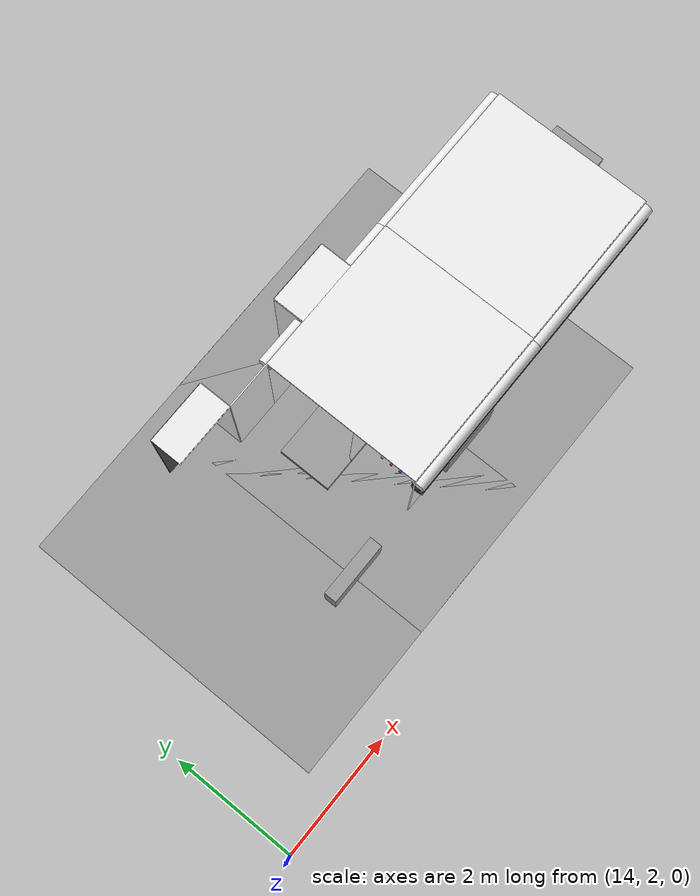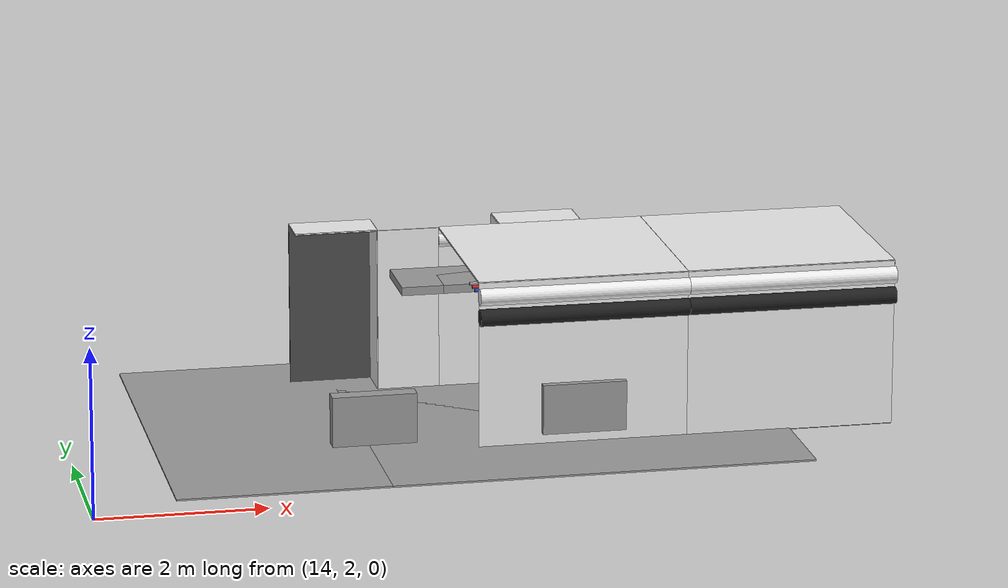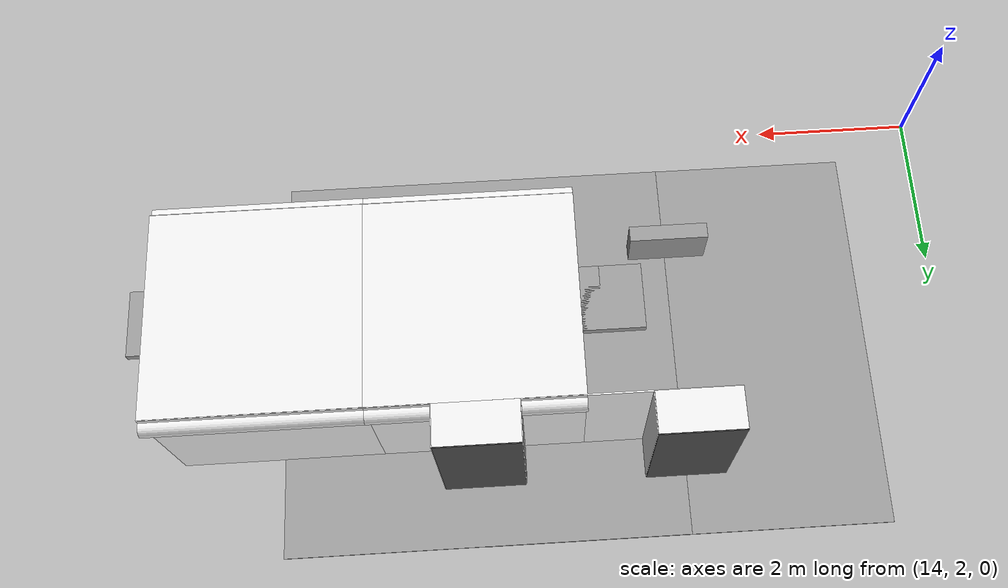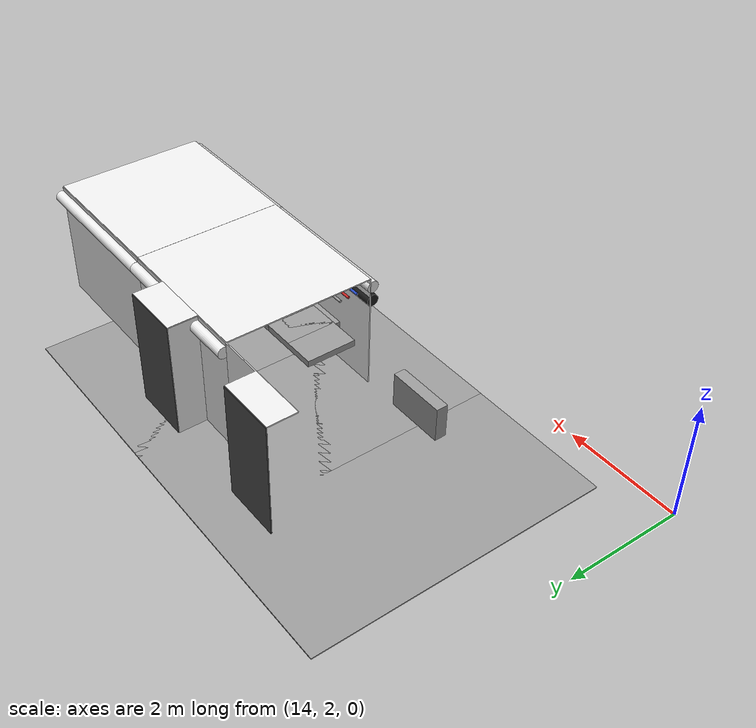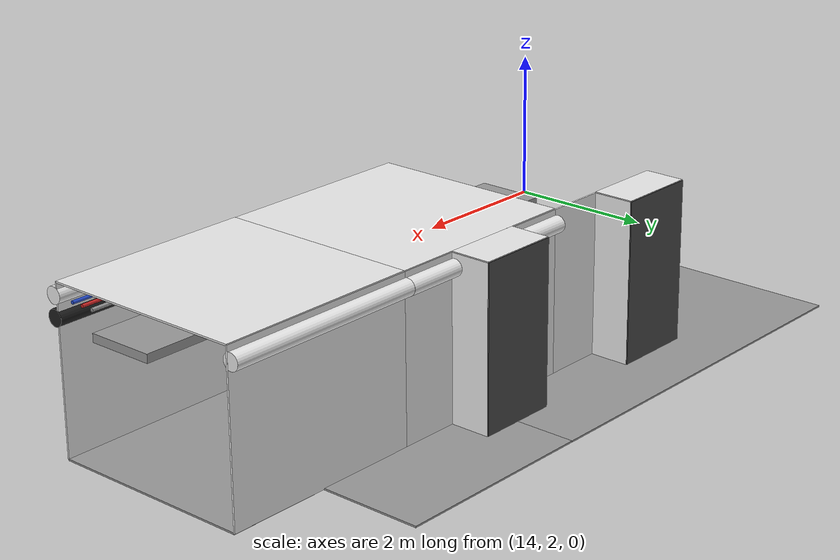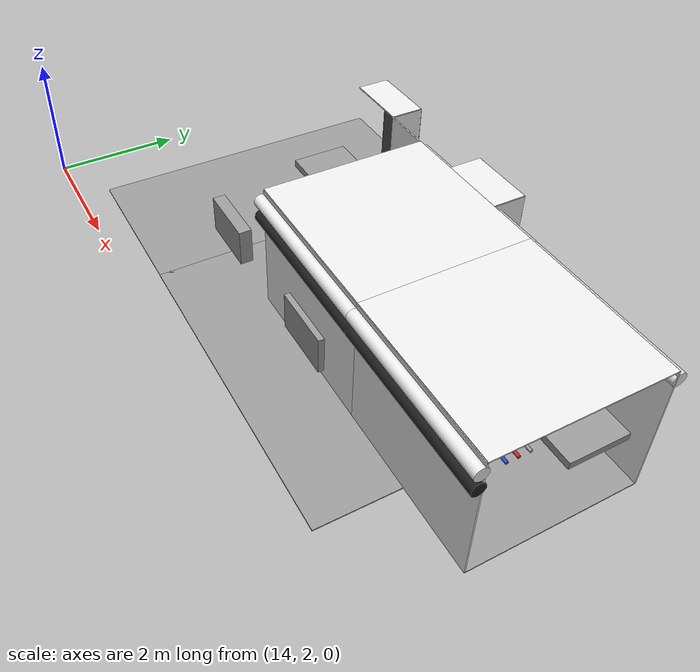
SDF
<sdf version="1.6">
 <world name="default">
  <model name="ceiling_1_7_2_2_1">
   <pose>18.5 5.0 1.7 0.0 0.0 -1.57</pose>
   <link name="link_1">
    <visual name="visual">
     <geometry><box><size>0.8 1 0.1</size></box></geometry>
     <material>
      <script><uri>file://media/materials/scripts/gazebo.material</uri><name>Gazebo/Grey</name></script>
     </material>
    </visual>
    <collision name="collision"><geometry><box><size>0.8 1 0.1</size></box></geometry></collision>
   </link>
   <static>1</static>
  </model>
  <model name="wall_bottom_7_2_0_1">
   <static>1</static>
   <pose>17.5 5.0 0.0 0.0 0.0 -1.57</pose>
   <link name="link">
    <collision name="collision"><geometry><box><size>5.0 5.0 0.02</size></box></geometry></collision>
    <visual name="visual">
     <material>
      <script><name>Gazebo/Grey</name><uri>file://media/materials/scripts/gazebo.material</uri></script>
     </material>
     <geometry><box><size>5.0 5.0 0.02</size></box></geometry>
    </visual>
   </link>
  </model>
  <model name="wall_left_front_left_7_2_0_1">
   <static>1</static>
   <pose>18.375 6.25 1.0 0.0 0.0 0.0</pose>
   <link name="link">
    <collision name="collision"><geometry><box><size>0.75 0.02 2.0</size></box></geometry></collision>
    <visual name="visual">
     <material>
      <script><name>Gazebo/White</name><uri>file://media/materials/scripts/gazebo.material</uri></script>
     </material>
     <geometry><box><size>0.75 0.02 2.0</size></box></geometry>
    </visual>
   </link>
  </model>
  <model name="wall_left_front_up_7_2_0_1">
   <static>1</static>
   <pose>17.5 6.25 2.0 0.0 0.0 0.0</pose>
   <link name="link">
    <collision name="collision"><geometry><box><size>1.0 0.02 0.001</size></box></geometry></collision>
    <visual name="visual">
     <material>
      <script><name>Gazebo/White</name><uri>file://media/materials/scripts/gazebo.material</uri></script>
     </material>
     <geometry><box><size>1.0 0.02 0.001</size></box></geometry>
    </visual>
   </link>
  </model>
  <model name="wall_left_inside_back_7_2_0_1">
   <static>1</static>
   <pose>17.5 6.75 1.0 0.0 0.0 0.0</pose>
   <link name="link">
    <collision name="collision"><geometry><box><size>1 0.02 2</size></box></geometry></collision>
    <visual name="visual">
     <material>
      <script><name>Gazebo/DarkGrey</name><uri>file://media/materials/scripts/gazebo.material</uri></script>
     </material>
     <geometry><box><size>1 0.02 2</size></box></geometry>
    </visual>
   </link>
  </model>
  <model name="wall_left_inside_left_7_2_0_1">
   <static>1</static>
   <pose>18.0 6.5 1.0 0.0 0.0 -1.57</pose>
   <link name="link">
    <collision name="collision"><geometry><box><size>0.5 0.02 2</size></box></geometry></collision>
    <visual name="visual">
     <material>
      <script><name>Gazebo/White</name><uri>file://media/materials/scripts/gazebo.material</uri></script>
     </material>
     <geometry><box><size>0.5 0.02 2</size></box></geometry>
    </visual>
   </link>
  </model>
  <model name="wall_left_inside_top_7_2_0_1">
   <static>1</static>
   <pose>17.5 6.5 2.0 1.57 0.0 0.0</pose>
   <link name="link">
    <collision name="collision"><geometry><box><size>1 0.02 0.5</size></box></geometry></collision>
    <visual name="visual">
     <material>
      <script><name>Gazebo/White</name><uri>file://media/materials/scripts/gazebo.material</uri></script>
     </material>
     <geometry><box><size>1 0.02 0.5</size></box></geometry>
    </visual>
   </link>
  </model>
  <model name="panel_7_2_0_1">
   <static>1</static>
   <pose>17.5 3.75 0.44 0.0 0.0 -1.57</pose>
   <link name="link">
    <collision name="collision"><geometry><box><size>0.2 1 0.6</size></box></geometry></collision>
    <visual name="visual">
     <material>
      <script><name>Gazebo/Grey</name><uri>file://media/materials/scripts/gazebo.material</uri></script>
     </material>
     <geometry><box><size>0.2 1 0.6</size></box></geometry>
    </visual>
   </link>
  </model>
  <model name="wall_right_8_2_0_1">
   <static>1</static>
   <pose>20.0 3.75 1.0 0.0 0.0 0.0</pose>
   <link name="link">
    <collision name="collision"><geometry><box><size>2.5 0.02 2.0</size></box></geometry></collision>
    <visual name="visual">
     <material>
      <script><name>Gazebo/White</name><uri>file://media/materials/scripts/gazebo.material</uri></script>
     </material>
     <geometry><box><size>2.5 0.02 2.0</size></box></geometry>
    </visual>
   </link>
  </model>
  <model name="wall_top_8_2_0_1">
   <static>1</static>
   <pose>20.0 5.0 2.0 1.57 0.0 -1.57</pose>
   <link name="link">
    <collision name="collision"><geometry><box><size>2.5 0.02 2.5</size></box></geometry></collision>
    <visual name="visual">
     <material>
      <script><name>Gazebo/White</name><uri>file://media/materials/scripts/gazebo.material</uri></script>
     </material>
     <geometry><box><size>2.5 0.02 2.5</size></box></geometry>
    </visual>
   </link>
  </model>
  <model name="ceiling_1_8_2_0_1">
   <pose>20.0 5.0 1.7 0.0 0.0 -1.57</pose>
   <link name="link_1">
    <visual name="visual">
     <geometry><box><size>0.8 1 0.1</size></box></geometry>
     <material>
      <script><uri>file://media/materials/scripts/gazebo.material</uri><name>Gazebo/Grey</name></script>
     </material>
    </visual>
    <collision name="collision"><geometry><box><size>0.8 1 0.1</size></box></geometry></collision>
   </link>
   <static>1</static>
  </model>
  <model name="ceiling_1_8_2_1_1">
   <pose>19.0 5.0 1.7 0.0 0.0 -1.57</pose>
   <link name="link_1">
    <visual name="visual">
     <geometry><box><size>0.8 1 0.1</size></box></geometry>
     <material>
      <script><uri>file://media/materials/scripts/gazebo.material</uri><name>Gazebo/Grey</name></script>
     </material>
    </visual>
    <collision name="collision"><geometry><box><size>0.8 1 0.1</size></box></geometry></collision>
   </link>
   <static>1</static>
  </model>
  <model name="ceiling_1_8_2_2_1">
   <pose>21.0 5.0 1.7 0.0 0.0 -1.57</pose>
   <link name="link_1">
    <visual name="visual">
     <geometry><box><size>0.8 1 0.1</size></box></geometry>
     <material>
      <script><uri>file://media/materials/scripts/gazebo.material</uri><name>Gazebo/Grey</name></script>
     </material>
    </visual>
    <collision name="collision"><geometry><box><size>0.8 1 0.1</size></box></geometry></collision>
   </link>
   <static>1</static>
  </model>
  <model name="white_pipe_left_8_2_0_1">
   <static>1</static>
   <pose>20.0 5.0 1.84 0.0 0.0 -1.57</pose>
   <link name="link_0">
    <visual name="visual">
     <pose>-1.3 0 0 1.57 0 0</pose>
     <geometry><cylinder><radius>0.1</radius><length>2.5</length></cylinder></geometry>
     <material>
      <script><uri>file://media/materials/scripts/gazebo.material</uri><name>Gazebo/White</name></script>
     </material>
    </visual>
    <collision name="collision">
     <pose>-1.3 0 0 1.57 0 0</pose>
     <geometry><cylinder><radius>0.1</radius><length>2.5</length></cylinder></geometry>
    </collision>
   </link>
  </model>
  <model name="white_pipe_right_8_2_0_1">
   <static>1</static>
   <pose>20.0 5.0 1.84 0.0 0.0 -1.57</pose>
   <link name="link_0">
    <visual name="visual">
     <pose>1.3 0 0 1.57 0 0</pose>
     <geometry><cylinder><radius>0.1</radius><length>2.5</length></cylinder></geometry>
     <material>
      <script><uri>file://media/materials/scripts/gazebo.material</uri><name>Gazebo/White</name></script>
     </material>
    </visual>
    <collision name="collision">
     <pose>1.3 0 0 1.57 0 0</pose>
     <geometry><cylinder><radius>0.1</radius><length>2.5</length></cylinder></geometry>
    </collision>
   </link>
  </model>
  <model name="black_pipe_right_8_2_0_1">
   <static>1</static>
   <pose>20.0 5.0 1.84 0.0 0.0 -1.57</pose>
   <link name="link_0">
    <visual name="visual">
     <pose>1.3 0 -0.25 1.57 0 0</pose>
     <geometry><cylinder><radius>0.1</radius><length>2.5</length></cylinder></geometry>
     <material>
      <script><uri>file://media/materials/scripts/gazebo.material</uri><name>Gazebo/Black</name></script>
     </material>
    </visual>
    <collision name="collision">
     <pose>1.3 0 -0.25 1.57 0 0</pose>
     <geometry><cylinder><radius>0.1</radius><length>2.5</length></cylinder></geometry>
    </collision>
   </link>
  </model>
  <model name="grey_pipe_right_8_2_0_1">
   <static>1</static>
   <pose>20.0 5.0 1.84 0.0 0.0 -1.57</pose>
   <link name="link_0">
    <visual name="visual">
     <pose>0.7 0 0 1.57 0 0</pose>
     <geometry><cylinder><radius>0.02</radius><length>2.5</length></cylinder></geometry>
     <material>
      <script><uri>file://media/materials/scripts/gazebo.material</uri><name>Gazebo/Grey</name></script>
     </material>
    </visual>
    <collision name="collision">
     <pose>0.7 0 0 1.57 0 0</pose>
     <geometry><cylinder><radius>0.02</radius><length>2.5</length></cylinder></geometry>
    </collision>
   </link>
  </model>
  <model name="red_pipe_right_8_2_0_1">
   <static>1</static>
   <pose>20.0 5.0 1.84 0.0 0.0 -1.57</pose>
   <link name="link_0">
    <visual name="visual">
     <pose>0.85 0 0 1.57 0 0</pose>
     <geometry><cylinder><radius>0.02</radius><length>2.5</length></cylinder></geometry>
     <material>
      <script><uri>file://media/materials/scripts/gazebo.material</uri><name>Gazebo/Red</name></script>
     </material>
    </visual>
    <collision name="collision">
     <pose>0.85 0 0 1.57 0 0</pose>
     <geometry><cylinder><radius>0.02</radius><length>2.5</length></cylinder></geometry>
    </collision>
   </link>
  </model>
  <model name="blue_pipe_right_8_2_0_1">
   <static>1</static>
   <pose>20.0 5.0 1.84 0.0 0.0 -1.57</pose>
   <link name="link_0">
    <visual name="visual">
     <pose>1 0 0 1.57 0 0</pose>
     <geometry><cylinder><radius>0.02</radius><length>2.5</length></cylinder></geometry>
     <material>
      <script><uri>file://media/materials/scripts/gazebo.material</uri><name>Gazebo/Blue</name></script>
     </material>
    </visual>
    <collision name="collision">
     <pose>1 0 0 1.57 0 0</pose>
     <geometry><cylinder><radius>0.02</radius><length>2.5</length></cylinder></geometry>
    </collision>
   </link>
  </model>
  <model name="wall_bottom_8_2_0_1">
   <static>1</static>
   <pose>20.0 5.0 0.0 0.0 0.0 -1.57</pose>
   <link name="link">
    <collision name="collision"><geometry><box><size>5.0 5.0 0.02</size></box></geometry></collision>
    <visual name="visual">
     <material>
      <script><name>Gazebo/Grey</name><uri>file://media/materials/scripts/gazebo.material</uri></script>
     </material>
     <geometry><box><size>5.0 5.0 0.02</size></box></geometry>
    </visual>
   </link>
  </model>
  <model name="wall_left_front_left_8_2_0_1">
   <static>1</static>
   <pose>20.875 6.25 1.0 0.0 0.0 0.0</pose>
   <link name="link">
    <collision name="collision"><geometry><box><size>0.75 0.02 2.0</size></box></geometry></collision>
    <visual name="visual">
     <material>
      <script><name>Gazebo/White</name><uri>file://media/materials/scripts/gazebo.material</uri></script>
     </material>
     <geometry><box><size>0.75 0.02 2.0</size></box></geometry>
    </visual>
   </link>
  </model>
  <model name="wall_left_front_right_8_2_0_1">
   <static>1</static>
   <pose>19.125 6.25 1.0 0.0 0.0 0.0</pose>
   <link name="link">
    <collision name="collision"><geometry><box><size>0.75 0.02 2.0</size></box></geometry></collision>
    <visual name="visual">
     <material>
      <script><name>Gazebo/White</name><uri>file://media/materials/scripts/gazebo.material</uri></script>
     </material>
     <geometry><box><size>0.75 0.02 2.0</size></box></geometry>
    </visual>
   </link>
  </model>
  <model name="wall_left_front_up_8_2_0_1">
   <static>1</static>
   <pose>20.0 6.25 2.0 0.0 0.0 0.0</pose>
   <link name="link">
    <collision name="collision"><geometry><box><size>1.0 0.02 0.001</size></box></geometry></collision>
    <visual name="visual">
     <material>
      <script><name>Gazebo/White</name><uri>file://media/materials/scripts/gazebo.material</uri></script>
     </material>
     <geometry><box><size>1.0 0.02 0.001</size></box></geometry>
    </visual>
   </link>
  </model>
  <model name="wall_left_inside_back_8_2_0_1">
   <static>1</static>
   <pose>20.0 6.75 1.0 0.0 0.0 0.0</pose>
   <link name="link">
    <collision name="collision"><geometry><box><size>1 0.02 2</size></box></geometry></collision>
    <visual name="visual">
     <material>
      <script><name>Gazebo/DarkGrey</name><uri>file://media/materials/scripts/gazebo.material</uri></script>
     </material>
     <geometry><box><size>1 0.02 2</size></box></geometry>
    </visual>
   </link>
  </model>
  <model name="wall_left_inside_left_8_2_0_1">
   <static>1</static>
   <pose>20.5 6.5 1.0 0.0 0.0 -1.57</pose>
   <link name="link">
    <collision name="collision"><geometry><box><size>0.5 0.02 2</size></box></geometry></collision>
    <visual name="visual">
     <material>
      <script><name>Gazebo/White</name><uri>file://media/materials/scripts/gazebo.material</uri></script>
     </material>
     <geometry><box><size>0.5 0.02 2</size></box></geometry>
    </visual>
   </link>
  </model>
  <model name="wall_left_inside_right_8_2_0_1">
   <static>1</static>
   <pose>19.5 6.5 1.0 0.0 0.0 -1.57</pose>
   <link name="link">
    <collision name="collision"><geometry><box><size>0.5 0.02 2</size></box></geometry></collision>
    <visual name="visual">
     <material>
      <script><name>Gazebo/White</name><uri>file://media/materials/scripts/gazebo.material</uri></script>
     </material>
     <geometry><box><size>0.5 0.02 2</size></box></geometry>
    </visual>
   </link>
  </model>
  <model name="wall_left_inside_top_8_2_0_1">
   <static>1</static>
   <pose>20.0 6.5 2.0 1.57 0.0 0.0</pose>
   <link name="link">
    <collision name="collision"><geometry><box><size>1 0.02 0.5</size></box></geometry></collision>
    <visual name="visual">
     <material>
      <script><name>Gazebo/White</name><uri>file://media/materials/scripts/gazebo.material</uri></script>
     </material>
     <geometry><box><size>1 0.02 0.5</size></box></geometry>
    </visual>
   </link>
  </model>
  <model name="panel_8_2_0_1">
   <static>1</static>
   <pose>20.0 3.75 0.44 0.0 0.0 -1.57</pose>
   <link name="link">
    <collision name="collision"><geometry><box><size>0.2 1 0.6</size></box></geometry></collision>
    <visual name="visual">
     <material>
      <script><name>Gazebo/Grey</name><uri>file://media/materials/scripts/gazebo.material</uri></script>
     </material>
     <geometry><box><size>0.2 1 0.6</size></box></geometry>
    </visual>
   </link>
  </model>
  <model name="wall_right_9_2_0_4">
   <static>1</static>
   <pose>22.5 3.75 1.0 0.0 0.0 0.0</pose>
   <link name="link">
    <collision name="collision"><geometry><box><size>2.5 0.02 2.0</size></box></geometry></collision>
    <visual name="visual">
     <material>
      <script><name>Gazebo/White</name><uri>file://media/materials/scripts/gazebo.material</uri></script>
     </material>
     <geometry><box><size>2.5 0.02 2.0</size></box></geometry>
    </visual>
   </link>
  </model>
  <model name="wall_left_9_2_0_4">
   <static>1</static>
   <pose>22.5 6.25 1.0 0.0 0.0 0.0</pose>
   <link name="link">
    <collision name="collision"><geometry><box><size>2.5 0.02 2.0</size></box></geometry></collision>
    <visual name="visual">
     <material>
      <script><name>Gazebo/White</name><uri>file://media/materials/scripts/gazebo.material</uri></script>
     </material>
     <geometry><box><size>2.5 0.02 2.0</size></box></geometry>
    </visual>
   </link>
  </model>
  <model name="wall_top_9_2_0_4">
   <static>1</static>
   <pose>22.5 5.0 2.0 1.57 0.0 -1.57</pose>
   <link name="link">
    <collision name="collision"><geometry><box><size>2.5 0.02 2.5</size></box></geometry></collision>
    <visual name="visual">
     <material>
      <script><name>Gazebo/White</name><uri>file://media/materials/scripts/gazebo.material</uri></script>
     </material>
     <geometry><box><size>2.5 0.02 2.5</size></box></geometry>
    </visual>
   </link>
  </model>
  <model name="ceiling_1_9_2_0_4">
   <pose>22.5 5.0 1.7 0.0 0.0 -1.57</pose>
   <link name="link_1">
    <visual name="visual">
     <geometry><box><size>0.8 1 0.1</size></box></geometry>
     <material>
      <script><uri>file://media/materials/scripts/gazebo.material</uri><name>Gazebo/Grey</name></script>
     </material>
    </visual>
    <collision name="collision"><geometry><box><size>0.8 1 0.1</size></box></geometry></collision>
   </link>
   <static>1</static>
  </model>
  <model name="ceiling_1_9_2_1_4">
   <pose>21.5 5.0 1.7 0.0 0.0 -1.57</pose>
   <link name="link_1">
    <visual name="visual">
     <geometry><box><size>0.8 1 0.1</size></box></geometry>
     <material>
      <script><uri>file://media/materials/scripts/gazebo.material</uri><name>Gazebo/Grey</name></script>
     </material>
    </visual>
    <collision name="collision"><geometry><box><size>0.8 1 0.1</size></box></geometry></collision>
   </link>
   <static>1</static>
  </model>
  <model name="ceiling_1_9_2_2_4">
   <pose>23.5 5.0 1.7 0.0 0.0 -1.57</pose>
   <link name="link_1">
    <visual name="visual">
     <geometry><box><size>0.8 1 0.1</size></box></geometry>
     <material>
      <script><uri>file://media/materials/scripts/gazebo.material</uri><name>Gazebo/Grey</name></script>
     </material>
    </visual>
    <collision name="collision"><geometry><box><size>0.8 1 0.1</size></box></geometry></collision>
   </link>
   <static>1</static>
  </model>
  <model name="white_pipe_left_9_2_0_4">
   <static>1</static>
   <pose>22.5 5.0 1.84 0.0 0.0 -1.57</pose>
   <link name="link_0">
    <visual name="visual">
     <pose>-1.3 0 0 1.57 0 0</pose>
     <geometry><cylinder><radius>0.1</radius><length>2.5</length></cylinder></geometry>
     <material>
      <script><uri>file://media/materials/scripts/gazebo.material</uri><name>Gazebo/White</name></script>
     </material>
    </visual>
    <collision name="collision">
     <pose>-1.3 0 0 1.57 0 0</pose>
     <geometry><cylinder><radius>0.1</radius><length>2.5</length></cylinder></geometry>
    </collision>
   </link>
  </model>
  <model name="white_pipe_right_9_2_0_4">
   <static>1</static>
   <pose>22.5 5.0 1.84 0.0 0.0 -1.57</pose>
   <link name="link_0">
    <visual name="visual">
     <pose>1.3 0 0 1.57 0 0</pose>
     <geometry><cylinder><radius>0.1</radius><length>2.5</length></cylinder></geometry>
     <material>
      <script><uri>file://media/materials/scripts/gazebo.material</uri><name>Gazebo/White</name></script>
     </material>
    </visual>
    <collision name="collision">
     <pose>1.3 0 0 1.57 0 0</pose>
     <geometry><cylinder><radius>0.1</radius><length>2.5</length></cylinder></geometry>
    </collision>
   </link>
  </model>
  <model name="black_pipe_right_9_2_0_4">
   <static>1</static>
   <pose>22.5 5.0 1.84 0.0 0.0 -1.57</pose>
   <link name="link_0">
    <visual name="visual">
     <pose>1.3 0 -0.25 1.57 0 0</pose>
     <geometry><cylinder><radius>0.1</radius><length>2.5</length></cylinder></geometry>
     <material>
      <script><uri>file://media/materials/scripts/gazebo.material</uri><name>Gazebo/Black</name></script>
     </material>
    </visual>
    <collision name="collision">
     <pose>1.3 0 -0.25 1.57 0 0</pose>
     <geometry><cylinder><radius>0.1</radius><length>2.5</length></cylinder></geometry>
    </collision>
   </link>
  </model>
  <model name="grey_pipe_right_9_2_0_4">
   <static>1</static>
   <pose>22.5 5.0 1.84 0.0 0.0 -1.57</pose>
   <link name="link_0">
    <visual name="visual">
     <pose>0.7 0 0 1.57 0 0</pose>
     <geometry><cylinder><radius>0.02</radius><length>2.5</length></cylinder></geometry>
     <material>
      <script><uri>file://media/materials/scripts/gazebo.material</uri><name>Gazebo/Grey</name></script>
     </material>
    </visual>
    <collision name="collision">
     <pose>0.7 0 0 1.57 0 0</pose>
     <geometry><cylinder><radius>0.02</radius><length>2.5</length></cylinder></geometry>
    </collision>
   </link>
  </model>
  <model name="red_pipe_right_9_2_0_4">
   <static>1</static>
   <pose>22.5 5.0 1.84 0.0 0.0 -1.57</pose>
   <link name="link_0">
    <visual name="visual">
     <pose>0.85 0 0 1.57 0 0</pose>
     <geometry><cylinder><radius>0.02</radius><length>2.5</length></cylinder></geometry>
     <material>
      <script><uri>file://media/materials/scripts/gazebo.material</uri><name>Gazebo/Red</name></script>
     </material>
    </visual>
    <collision name="collision">
     <pose>0.85 0 0 1.57 0 0</pose>
     <geometry><cylinder><radius>0.02</radius><length>2.5</length></cylinder></geometry>
    </collision>
   </link>
  </model>
  <model name="blue_pipe_right_9_2_0_4">
   <static>1</static>
   <pose>22.5 5.0 1.84 0.0 0.0 -1.57</pose>
   <link name="link_0">
    <visual name="visual">
     <pose>1 0 0 1.57 0 0</pose>
     <geometry><cylinder><radius>0.02</radius><length>2.5</length></cylinder></geometry>
     <material>
      <script><uri>file://media/materials/scripts/gazebo.material</uri><name>Gazebo/Blue</name></script>
     </material>
    </visual>
    <collision name="collision">
     <pose>1 0 0 1.57 0 0</pose>
     <geometry><cylinder><radius>0.02</radius><length>2.5</length></cylinder></geometry>
    </collision>
   </link>
  </model>
  <model name="wall_bottom_9_2_0_4">
   <static>1</static>
   <pose>22.5 5.0 0.0 0.0 0.0 -1.57</pose>
   <link name="link">
    <collision name="collision"><geometry><box><size>2.5 2.5 0.02</size></box></geometry></collision>
    <visual name="visual">
     <material>
      <script><name>Gazebo/Grey</name><uri>file://media/materials/scripts/gazebo.material</uri></script>
     </material>
     <geometry><box><size>2.5 2.5 0.02</size></box></geometry>
    </visual>
   </link>
  </model>
 </world>
</sdf>
